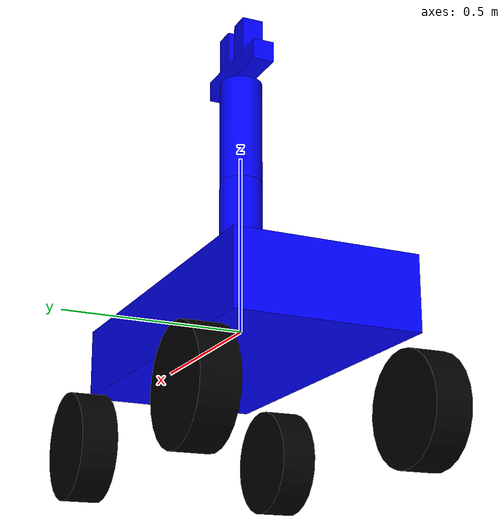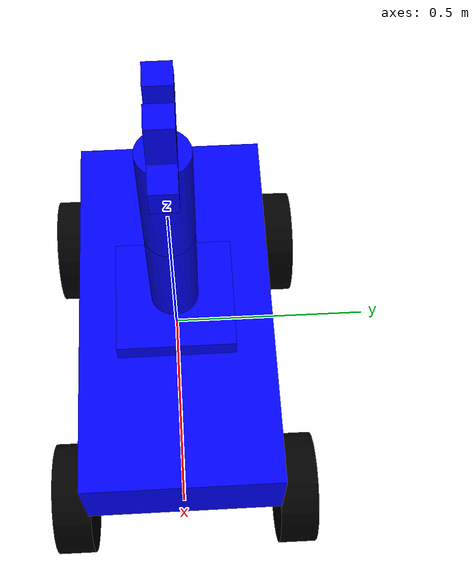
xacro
<?xml version="1.0"?>
<robot xmlns:xacro="http://www.ros.org/wiki/xacro" name="combined_robot">

    <!-- Включение мобильной платформы -->
    <xacro:include filename="mobile_robot.xacro"/>
    <xacro:mobile_robot base_link="chassis"/>
    <joint name="connector_joint" type="fixed">
        <origin xyz="0.0 0.0 0.1" rpy="0.0 0.0 0.0"/>
        <parent link="chassis"/>
        <child link="base_link"/>
        <axis xyz="0.0 0.0 1.0"/>
    </joint>
    <!-- Включение манипулятора -->
    <xacro:include filename="manipulator.xacro"/>
    <xacro:manipulator/>

</robot>

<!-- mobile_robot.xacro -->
<robot xmlns:xacro="http://www.ros.org/wiki/xacro" name="mobile_robot">

    <xacro:macro name="mobile_robot" params="base_link">
  <link name="${base_link}">
    <visual>
      <geometry>
        <box size="1.0 0.5 0.2"/>
      </geometry>
      <material name="blue">
        <color rgba="0.0 0.0 1.0 1.0"/>
      </material>
    </visual>
    <collision>
      <geometry>
        <box size="1.0 0.5 0.2"/>
      </geometry>
    </collision>
  </link>

  <!-- Передние колеса -->
  <link name="front_left_wheel">
    <visual>
    <origin xyz="0.0 0.0 0.0" rpy="1.56 0.0 0.0"/>
      <geometry>
        <cylinder length="0.1" radius="0.15"/>
      </geometry>
      <material name="black">
        <color rgba="0.0 0.0 0.0 1.0"/>
      </material>
    </visual>
    <collision>
    <origin xyz="0.0 0.0 0.0" rpy="1.56 0.0 0.0"/>
      <geometry>
        <cylinder length="0.1" radius="0.15"/>
      </geometry>
    </collision>
  </link>

  <link name="front_right_wheel">
    <visual>
    <origin xyz="0.0 0.0 0.0" rpy="1.56 0.0 0.0"/>
      <geometry>
        <cylinder length="0.1" radius="0.15"/>
      </geometry>
      <material name="black">
        <color rgba="0.0 0.0 0.0 1.0"/>
      </material>
    </visual>
    <collision>
    <origin xyz="0.0 0.0 0.0" rpy="1.56 0.0 0.0"/>
      <geometry>
        <cylinder length="0.1" radius="0.15"/>
      </geometry>
    </collision>
  </link>

  <!-- Задние колеса -->
  <link name="rear_left_wheel">
    <visual>
    <origin xyz="0.0 0.0 0.0" rpy="1.56 0.0 0.0"/>
      <geometry>
        <cylinder length="0.1" radius="0.15"/>
      </geometry>
      <material name="black">
        <color rgba="0.0 0.0 0.0 1.0"/>
      </material>
    </visual>
    <collision>
    <origin xyz="0.0 0.0 0.0" rpy="1.56 0.0 0.0"/>
      <geometry>
        <cylinder length="0.1" radius="0.15"/>
      </geometry>
    </collision>
  </link>

  <link name="rear_right_wheel">
    <visual>
    <origin xyz="0.0 0.0 0.0" rpy="1.56 0.0 0.0"/>
      <geometry>
        <cylinder length="0.1" radius="0.15"/>
      </geometry>
      <material name="black">
        <color rgba="0.0 0.0 0.0 1.0"/>
      </material>
    </visual>
    <collision>
    <origin xyz="0.0 0.0 0.0" rpy="1.56 0.0 0.0"/>
      <geometry>
        <cylinder length="0.1" radius="0.15"/>
      </geometry>
    </collision>
  </link>

  <!-- Шарниры для передних колес -->
  <joint name="front_left_steering_joint" type="revolute">
    <parent link="${base_link}"/>
    <child link="front_left_wheel"/>
    <origin xyz="0.4 0.3 -0.265" rpy="0 0 0"/>
    <axis xyz="0 0 1"/>
    <limit lower="-0.5" upper="0.5" effort="1.0" velocity="1.0"/>
  </joint>

  <joint name="front_right_steering_joint" type="revolute">
    <parent link="${base_link}"/>
    <child link="front_right_wheel"/>
    <origin xyz="0.4 -0.3 -0.265" rpy="0 0 0"/>
    <axis xyz="0 0 1"/>
    <limit lower="-0.5" upper="0.5" effort="1.0" velocity="1.0"/>
  </joint>

  <!-- Шарниры для вращения колес -->
  <joint name="rear_left_drive_joint" type="continuous">
    <parent link="${base_link}"/>
    <child link="rear_left_wheel"/>
    <origin xyz="-0.4 0.3 -0.265" rpy="0 0 0"/>
    <axis xyz="0 1 0"/>
  </joint>

  <joint name="rear_right_drive_joint" type="continuous">
    <parent link="${base_link}"/>
    <child link="rear_right_wheel"/>
    <origin xyz="-0.4 -0.3 -0.265" rpy="0 0 0"/>
    <axis xyz="0 1 0"/>
  </joint>
  <gazebo>
  <plugin name="ackermann_steering_plugin" filename="libackermann_steering_plugin.so">
    <left_steering_joint>front_left_steering_joint</left_steering_joint>
    <right_steering_joint>front_right_steering_joint</right_steering_joint>
    <left_drive_joint>rear_left_drive_joint</left_drive_joint>
    <right_drive_joint>rear_right_drive_joint</right_drive_joint>
    <wheel_base>1.0</wheel_base>
    <track_width>0.6</track_width>
  </plugin>
</gazebo>
    </xacro:macro>
</robot>

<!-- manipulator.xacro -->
<robot xmlns:xacro="http://www.ros.org/wiki/xacro" name="manipulator">

    <!-- Включаем описание манипулятора -->
    <xacro:property name="base_origin" value="0 0 0.2"/> <!-- Поднятие манипулятора над платформой -->

    <!-- Манипулятор из вашего файла -->
    <xacro:include filename="static_robot.urdf"/>

</robot>

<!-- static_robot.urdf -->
<robot xmlns:xacro="http://www.ros.org/wiki/xacro" name="tf_tree">

    <xacro:macro name="manipulator" params="">
    <link name="base_link">

        <visual>
            <origin xyz="0.0 0.0 0.0" rpy="0.0 0.0 0.0"/>
            <geometry>
                <box size="0.3 0.3 0.1"/>
            </geometry>
            <material name="blue">
                <color rgba="0.0 0.0 1.0 1.0"/>
            </material>
        </visual>

        <collision>
            <geometry>
                <box size="0.3 0.3 0.1"/>
            </geometry>
        </collision>

    </link>

    <link name="link_1">

        <visual>
            <origin xyz="0.0 0.0 0.18" rpy="0.0 0.0 0.0"/>
            <geometry>
                <cylinder radius="0.06" length="0.3"/>
            </geometry>
            <material name="blue">
                <color rgba="0.0 0.0 1.0 1.0"/>
            </material>
        </visual>

        <collision>
            <geometry>
                <cylinder radius="0.06" length="0.3"/>
            </geometry>
        </collision>

        <inertial>
            <mass value="1.0"/>
            <origin xyz="0.0 0.0 0.0" rpy="0.0 0.0 0.0"/>
            <inertia ixx="0.03" ixy="0.0" ixz="0.0" iyy="0.03" iyz="0.0" izz="0.03"/>
        </inertial>

    </link>

    <link name="link_2">
        <visual>
            <origin xyz="0.0 0.0 0.18" rpy="0.0 0.0 0.0"/>
            <geometry>
                <cylinder radius="0.06" length="0.3"/>
            </geometry>
            <material name="blue">
                <color rgba="0.0 0.0 1.0 1.0"/>
            </material>
        </visual>

        <collision>
            <geometry>
                <cylinder radius="0.06" length="0.3"/>
            </geometry>
        </collision>

        <inertial>
            <mass value="1.0"/>
            <origin xyz="0.0 0.0 0.0" rpy="0.0 0.0 0.0"/>
            <inertia ixx="0.03" ixy="0.0" ixz="0.0" iyy="0.03" iyz="0.0" izz="0.03"/>
        </inertial>
    </link>

    <link name="gripper">
        <visual>
            <origin xyz="0.0 0.0 0.07" rpy="0.0 0.0 0.0"/>
            <geometry>
                <box size="0.3 0.06 0.06"/>
            </geometry>
            <material name="blue">
                <color rgba="0.0 0.0 1.0 1.0"/>
            </material>
        </visual>

        <collision>
            <geometry>
                <box size="0.3 0.06 0.06"/>
            </geometry>
        </collision>

        <inertial>
            <mass value="1.0"/>
            <origin xyz="0.0 0.0 0.0" rpy="0.0 0.0 0.0"/>
            <inertia ixx="0.01" ixy="0.0" ixz="0.0" iyy="0.01" iyz="0.0" izz="0.01"/>
        </inertial>
    </link>

    <link name="finger_1">
        <visual>
            <origin xyz="0.0 0.0 0.14" rpy="0.0 1.56 0.0"/>
            <geometry>
                <box size="0.1 0.06 0.06"/>
            </geometry>
            <material name="blue">
                <color rgba="0.0 0.0 1.0 1.0"/>
            </material>
        </visual>

        <collision>
            <geometry>
                <box size="0.3 0.06 0.06"/>
            </geometry>
        </collision>

        <inertial>
            <mass value="1.0"/>
            <origin xyz="0.0 0.0 0.0" rpy="0.0 0.0 0.0"/>
            <inertia ixx="0.01" ixy="0.0" ixz="0.0" iyy="0.01" iyz="0.0" izz="0.01"/>
        </inertial>
    </link>

    <link name="finger_2">
        <visual>
            <origin xyz="0.0 0.0 0.14" rpy="0.0 1.56 0.0"/>
            <geometry>
                <box size="0.1 0.06 0.06"/>
            </geometry>
            <material name="blue">
                <color rgba="0.0 0.0 1.0 1.0"/>
            </material>
        </visual>

        <collision>
            <geometry>
                <box size="0.3 0.06 0.06"/>
            </geometry>
        </collision>

        <inertial>
            <mass value="1.0"/>
            <origin xyz="0.0 0.0 0.0" rpy="0.0 0.0 0.0"/>
            <inertia ixx="0.01" ixy="0.0" ixz="0.0" iyy="0.01" iyz="0.0" izz="0.01"/>
        </inertial>
    </link>

    <joint name="base_joint" type="continuous">
        <origin xyz="0.0 0.0 0.0" rpy="0.0 0.0 0.0"/>
        <parent link="base_link"/>
        <child link="link_1"/>
        <axis xyz="0.0 0.0 1.0"/>
    </joint>

    <joint name="joint_1" type="revolute">
        <origin xyz="0.0 0.0 0.3" rpy="0.0 0.0 0.0"/>
        <parent link="link_1"/>
        <child link="link_2"/>
        <axis xyz="0.0 1.0 0.0"/>
        <limit lower="-3.14" upper="3.14" effort="1.0" velocity="5.0"/>
    </joint>

    <joint name="joint_2" type="revolute">
        <origin xyz="0.0 0.0 0.3" rpy="0.0 0.0 0.0"/>
        <parent link="link_2"/>
        <child link="gripper"/>
        <axis xyz="0.0 0.0 1.0"/>
        <limit lower="-3.14" upper="3.14" effort="1.0" velocity="5.0"/>
    </joint>

    <joint name="joint_3" type="prismatic">
        <origin xyz="0.05 0.0 0.01" rpy="0.0 0.0 0.0"/>
        <parent link="gripper"/>
        <child link="finger_1"/>
        <axis xyz="-1.0 0.0 0.0"/>
        <limit lower="-0.5" upper="0.01" effort="1.0" velocity="5.0"/>
    </joint>

    <joint name="joint_4" type="prismatic">
        <origin xyz="-0.05 0.0 0.01" rpy="0.0 0.0 0.0"/>
        <parent link="gripper"/>
        <child link="finger_2"/>
        <axis xyz="1.0 0.0 0.0"/>
        <limit lower="-0.5" upper="0.01" effort="1.0" velocity="5.0"/>
    </joint>
     </xacro:macro>
</robot>
